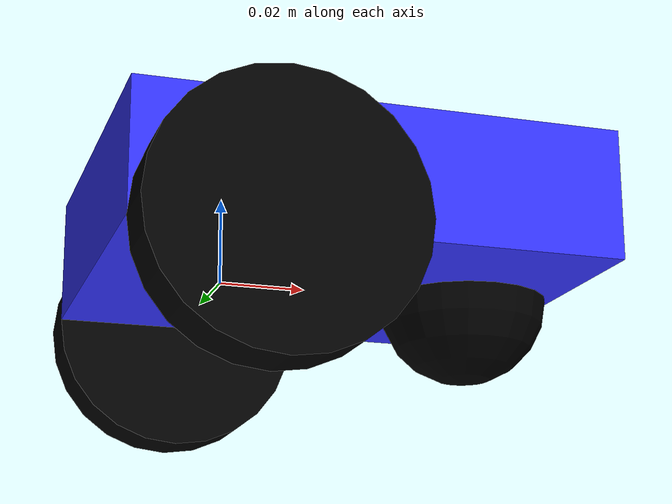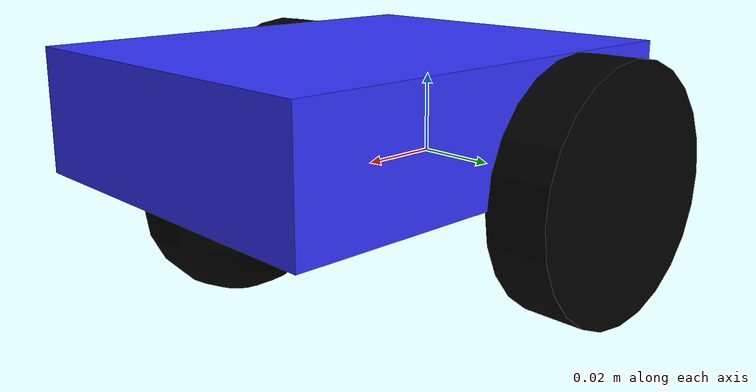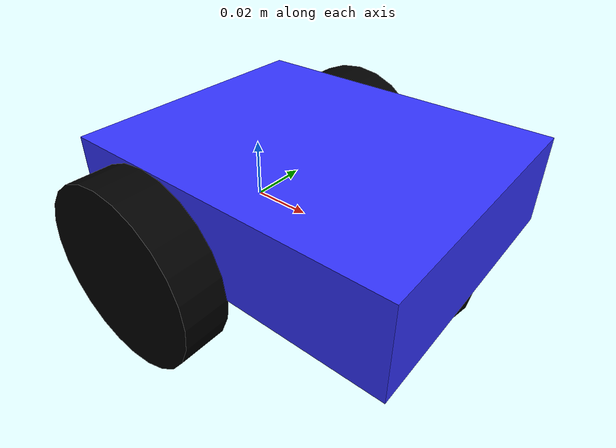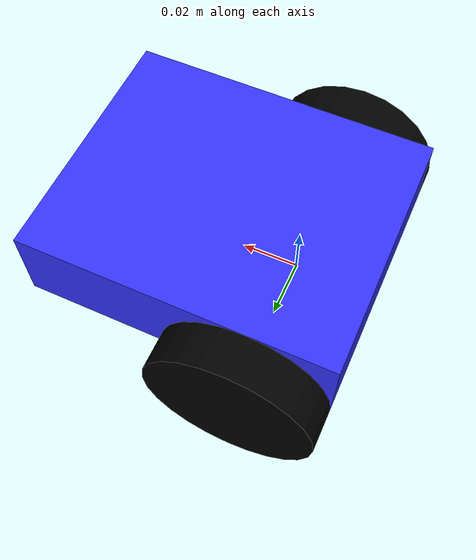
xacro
<?xml version="1.0"?>
<robot xmlns:xacro="http://www.ros.org/wiki/xacro"  name="robot">

    <xacro:include filename="robot_core.xacro" />
    <xacro:include filename="ros2_control.xacro"/>
</robot>

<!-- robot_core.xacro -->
<robot xmlns:xacro="http://www.ros.org/wiki/xacro" >

    <xacro:include filename="inertial_macros.xacro"/>

    <material name="white">
        <color rgba="1 1 1 1" />
    </material>

    <material name="orange">
        <color rgba="1 0.3 0.1 1"/>
    </material>

    <material name="blue">
        <color rgba="0.2 0.2 1 1"/>
    </material>

    <material name="black">
        <color rgba="0 0 0 1"/>
    </material>

    <material name="red">
        <color rgba="1 0 0 1"/>
    </material>

    <!-- BASE LINK -->

    <link name="base_link">

    </link>

    <!-- CHASSIS LINK -->

    <joint name="chassis_joint" type="fixed">
        <parent link="base_link"/>
        <child link="chassis"/>
        <origin xyz="-0.03 0 0"/>
    </joint>

    <link name="chassis">
        <visual>
            <origin xyz="0.055 0 0.015"/>
            <geometry>
                <box size="0.11 0.09 0.03"/>
            </geometry>
            <material name="blue"/>
        </visual>
        <collision>
            <origin xyz="0.055 0 0.015"/>
            <geometry>
                <box size="0.11 0.09 0.03"/>
            </geometry>
        </collision>
        <xacro:inertial_box mass="0.05" x="0.11" y="0.09" z="0.03">
            <origin xyz="0.055 0 0.015" rpy="0 0 0"/>
        </xacro:inertial_box>
    </link>
    <gazebo reference="chassis">
        <material>Gazebo/Blue</material>
    </gazebo>

    <!-- LEFT WHEEL LINK -->

    <joint name="left_wheel_joint" type="continuous">
        <parent link="base_link"/>
        <child link="left_wheel"/>
        <origin xyz="0 0.052 0" rpy="-${pi/2} 0 0" />
        <axis xyz="0 0 1"/>
    </joint>

    <link name="left_wheel">
        <visual>
            <geometry>
                <cylinder radius="0.03" length="0.015"/>
            </geometry>
            <material name="black"/>
        </visual>
        <collision>
            <geometry>
                <cylinder radius="0.03" length="0.015"/>
            </geometry>
        </collision>
        <xacro:inertial_cylinder mass="0.05" length="0.03" radius="0.015">
            <origin xyz="0 0 0" rpy="0 0 0"/>
        </xacro:inertial_cylinder>
    </link>
    <gazebo reference="left_wheel">
        <material>Gazebo/Black</material>
    </gazebo>

    <!-- RIGHT WHEEL LINK -->

    <joint name="right_wheel_joint" type="continuous">
        <parent link="base_link"/>
        <child link="right_wheel"/>
        <origin xyz="0 -0.052 0" rpy="${pi/2} 0 0" />
        <axis xyz="0 0 -1"/>
    </joint>

    <link name="right_wheel">
        <visual>
            <geometry>
                <cylinder radius="0.03" length="0.015"/>
            </geometry>
            <material name="black"/>
        </visual>
        <collision>
            <geometry>
                <cylinder radius="0.03" length="0.015"/>
            </geometry>
        </collision>
        <xacro:inertial_cylinder mass="0.05" length="0.03" radius="0.0015">
            <origin xyz="0 0 0" rpy="0 0 0"/>
        </xacro:inertial_cylinder>
    </link>
    <gazebo reference="right_wheel">
        <material>Gazebo/Black</material>
    </gazebo>

    <!-- CASTER WHEEL LINK -->

    <joint name="caster_wheel_joint" type="fixed">
        <parent link="chassis"/>
        <child link="caster_wheel"/>
        <origin xyz="0.09 0 0"/>
    </joint>

    <link name="caster_wheel">
        <visual>
            <geometry>
                <sphere radius="0.02"/>
            </geometry>
            <material name="black"/>
        </visual>
        <collision>
            <geometry>
                <sphere radius="0.03"/>
            </geometry>
        </collision>
        <xacro:inertial_sphere mass="0.02" radius="0.02">
            <origin xyz="0 0 0" rpy="0 0 0"/>
        </xacro:inertial_sphere>
    </link>
    <gazebo reference="caster_wheel">
        <material>Gazebo/Black</material>
        <mu1 value="0.001"/>
        <mu2 value="0.001"/>
    </gazebo>
</robot>
